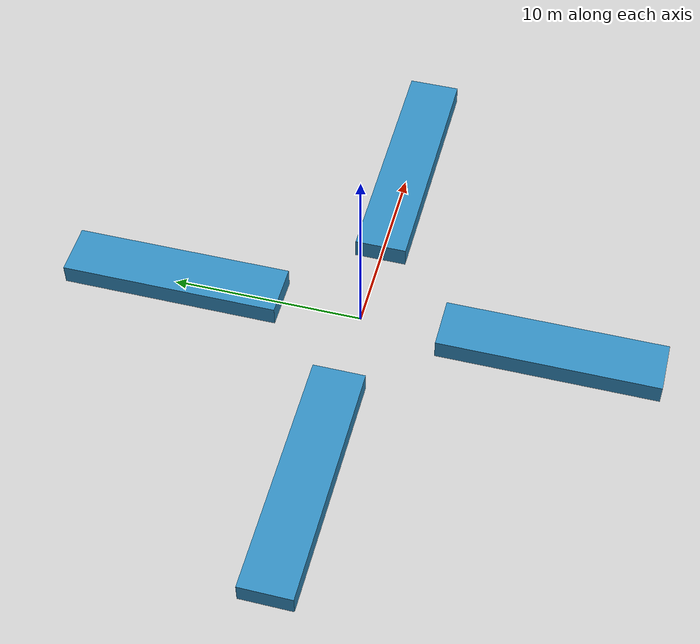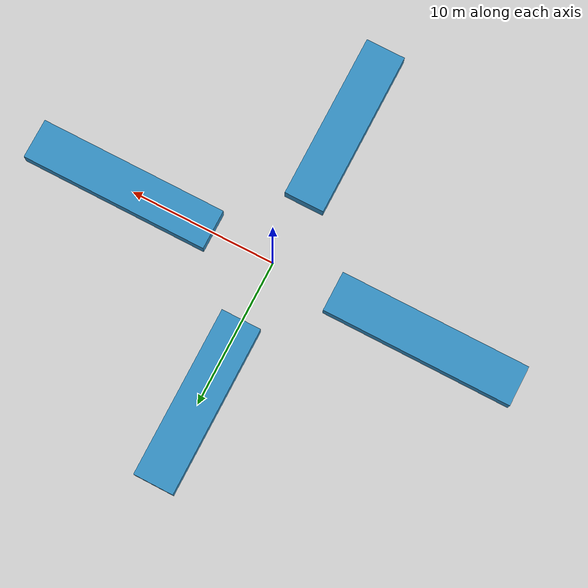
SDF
<sdf version="1.8">
 <world name="cross_2">
  <scene><grid>false</grid></scene>
  <physics name="1ms" type="ignored">
   <max_step_size>0.002</max_step_size>
   <real_time_factor>1.0</real_time_factor>
  </physics>
  <plugin filename="libignition-gazebo-physics-system.so" name="ignition::gazebo::systems::Physics"/>
  <plugin filename="libignition-gazebo-sensors-system.so" name="ignition::gazebo::systems::Sensors">
   <render_engine>ogre</render_engine>
   <namespace>test</namespace>
  </plugin>
  <plugin filename="ignition-gazebo-imu-system" name="ignition::gazebo::systems::Imu"/>
  <plugin filename="libignition-gazebo-user-commands-system.so" name="ignition::gazebo::systems::UserCommands"/>
  <plugin filename="libignition-gazebo-scene-broadcaster-system.so" name="ignition::gazebo::systems::SceneBroadcaster"/>
  <light type="directional" name="sun">
   <cast_shadows>false</cast_shadows>
   <pose>0 0 10 0 0 0</pose>
   <diffuse>0.8 0.8 0.8 1</diffuse>
   <specular>0.2 0.2 0.2 1</specular>
   <attenuation>
    <range>1000</range>
    <constant>0.9</constant>
    <linear>0.01</linear>
    <quadratic>0.001</quadratic>
   </attenuation>
   <direction>-0.5 0.1 -0.9</direction>
  </light>
  <model name="ground_plane">
   <static>true</static>
   <link name="link">
    <collision name="collision"><geometry><plane><normal>0.0 0.0 1.0</normal></plane></geometry></collision>
    <visual name="visual">
     <geometry><plane><normal>0.0 0.0 1.0</normal><size>100 100</size></plane></geometry>
     <material>
      <ambient>0.8 0.8 0.8 1</ambient>
      <diffuse>0.8 0.8 0.8 1</diffuse>
      <specular>0.8 0.8 0.8 1</specular>
     </material>
    </visual>
   </link>
  </model>
  <model name="arm_n">
   <static>true</static>
   <pose>0.0000 9.9000 0.5250 0 0 0.0000</pose>
   <link name="link">
    <collision name="c"><geometry><box><size>2.7000 11.4000 1.0500</size></box></geometry></collision>
    <visual name="v">
     <geometry><box><size>2.7000 11.4000 1.0500</size></box></geometry>
     <material>
      <ambient>0.200 0.550 0.750 1</ambient>
      <diffuse>0.200 0.550 0.750 1</diffuse>
      <specular>0.2 0.2 0.2 1</specular>
     </material>
    </visual>
   </link>
  </model>
  <model name="arm_s">
   <static>true</static>
   <pose>0.0000 -9.9000 0.5250 0 0 0.0000</pose>
   <link name="link">
    <collision name="c"><geometry><box><size>2.7000 11.4000 1.0500</size></box></geometry></collision>
    <visual name="v">
     <geometry><box><size>2.7000 11.4000 1.0500</size></box></geometry>
     <material>
      <ambient>0.200 0.550 0.750 1</ambient>
      <diffuse>0.200 0.550 0.750 1</diffuse>
      <specular>0.2 0.2 0.2 1</specular>
     </material>
    </visual>
   </link>
  </model>
  <model name="arm_e">
   <static>true</static>
   <pose>10.6000 0.0000 0.5250 0 0 0.0000</pose>
   <link name="link">
    <collision name="c"><geometry><box><size>12.8000 2.7000 1.0500</size></box></geometry></collision>
    <visual name="v">
     <geometry><box><size>12.8000 2.7000 1.0500</size></box></geometry>
     <material>
      <ambient>0.200 0.550 0.750 1</ambient>
      <diffuse>0.200 0.550 0.750 1</diffuse>
      <specular>0.2 0.2 0.2 1</specular>
     </material>
    </visual>
   </link>
  </model>
  <model name="arm_w">
   <static>true</static>
   <pose>-10.6000 0.0000 0.5250 0 0 0.0000</pose>
   <link name="link">
    <collision name="c"><geometry><box><size>12.8000 2.7000 1.0500</size></box></geometry></collision>
    <visual name="v">
     <geometry><box><size>12.8000 2.7000 1.0500</size></box></geometry>
     <material>
      <ambient>0.200 0.550 0.750 1</ambient>
      <diffuse>0.200 0.550 0.750 1</diffuse>
      <specular>0.2 0.2 0.2 1</specular>
     </material>
    </visual>
   </link>
  </model>
 </world>
</sdf>
